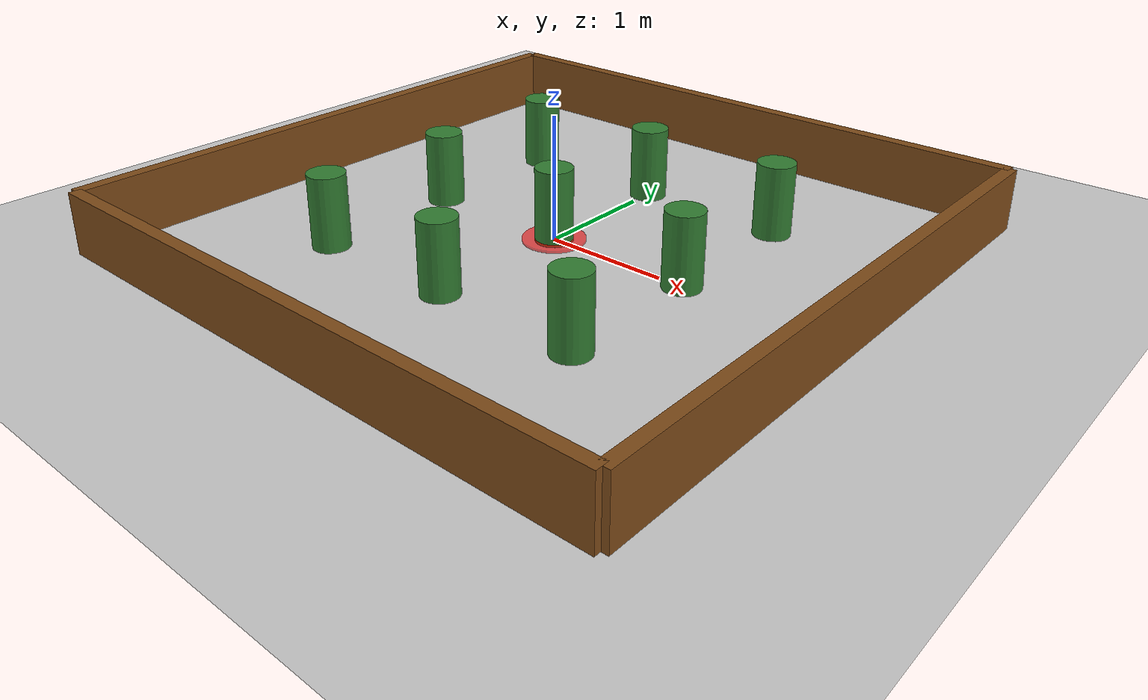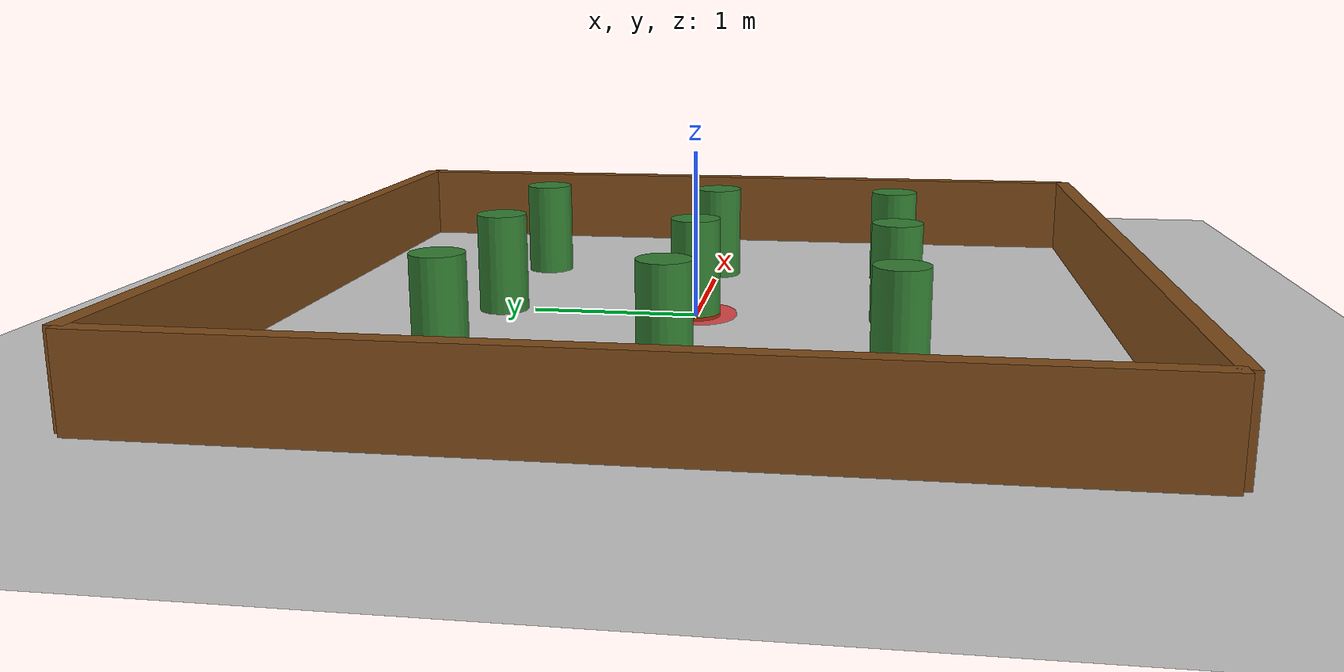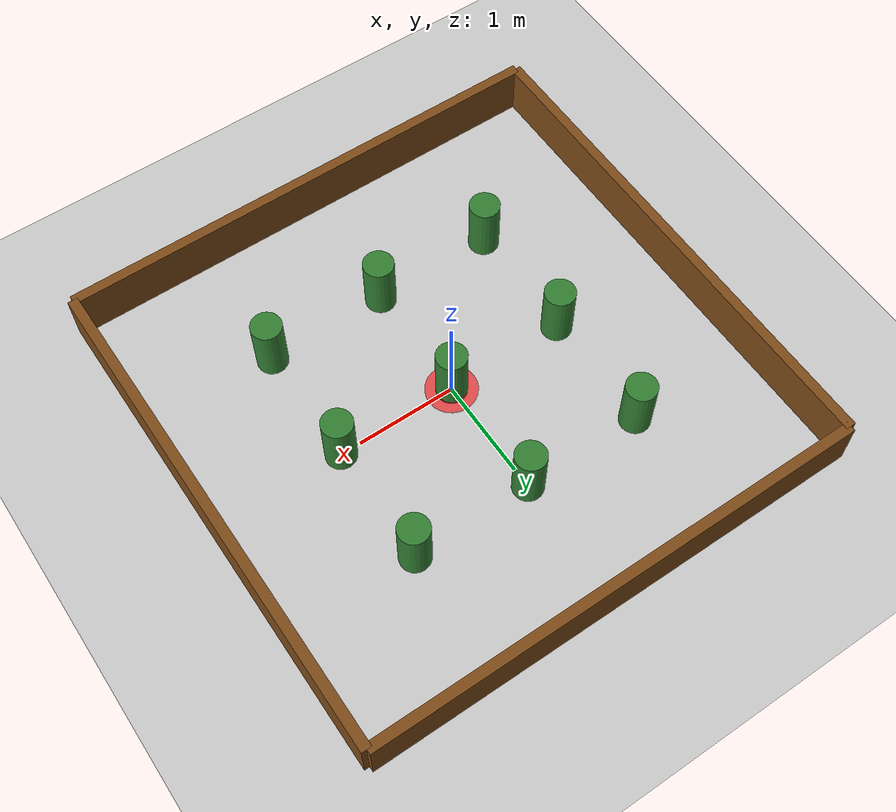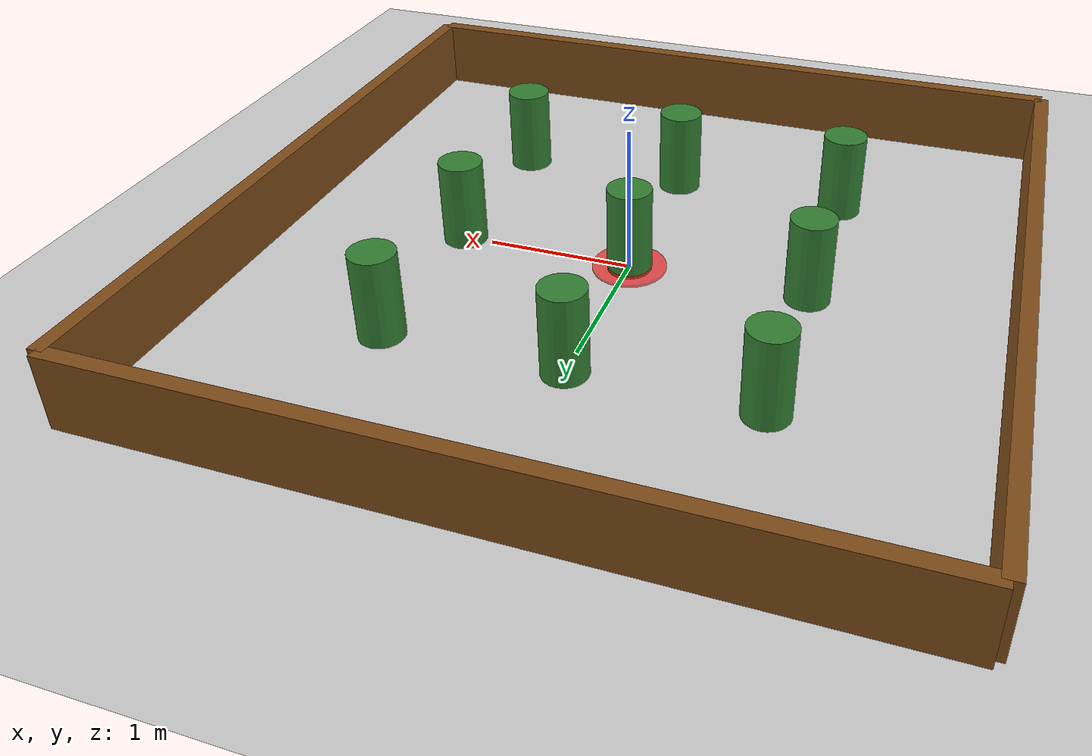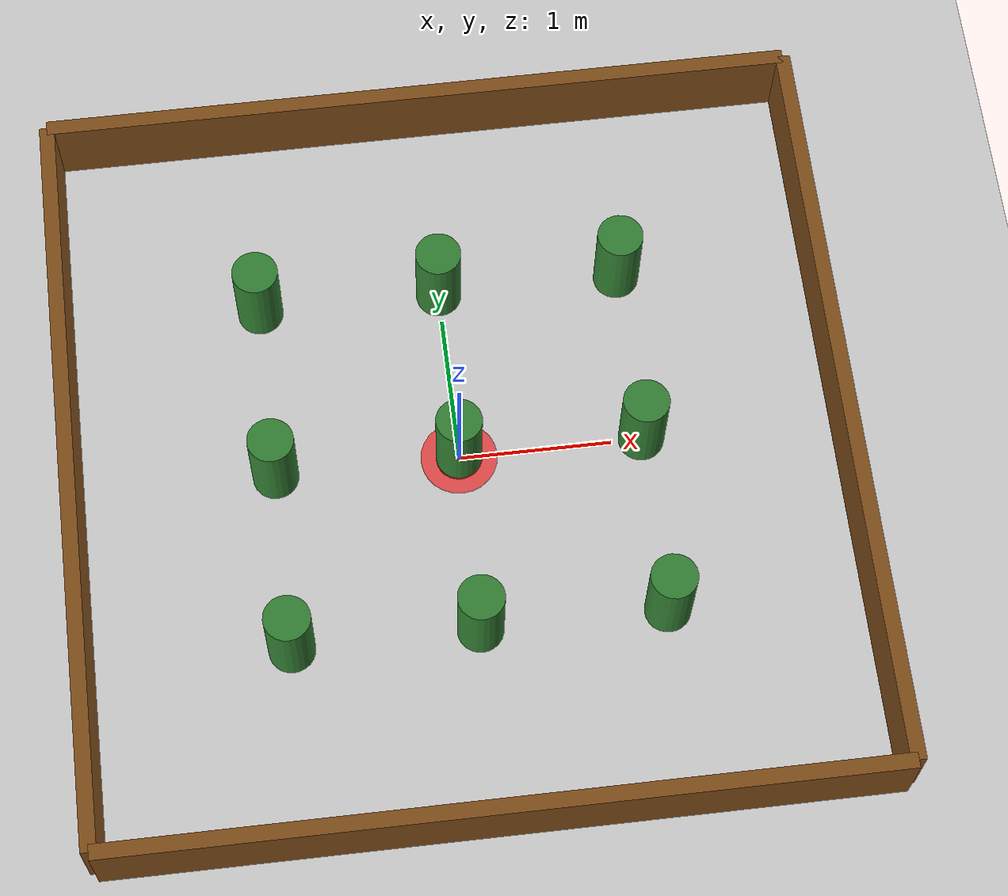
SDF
<?xml version="1.0" ?>
<sdf version="1.8">
  <world name="arena">

    <physics name="1ms" type="ignored">
      <max_step_size>0.001</max_step_size>
      <real_time_factor>1.0</real_time_factor>
    </physics>

    <plugin filename="gz-sim-physics-system" name="gz::sim::systems::Physics"/>
    <plugin filename="gz-sim-sensors-system" name="gz::sim::systems::Sensors">
      <render_engine>ogre2</render_engine>
    </plugin>
    <plugin filename="gz-sim-user-commands-system" name="gz::sim::systems::UserCommands"/>
    <plugin filename="gz-sim-scene-broadcaster-system" name="gz::sim::systems::SceneBroadcaster"/>

    <scene>
      <ambient>0.8 0.8 0.8 1</ambient>
      <background>1 1 1 1</background>
      <shadows>false</shadows>
    </scene>

    <light type="directional" name="sun">
      <cast_shadows>false</cast_shadows>
      <pose>0 0 10 0 0 0</pose>
      <diffuse>1 1 1 1</diffuse>
      <direction>-0.5 0.1 -0.9</direction>
    </light>

    <model name="ground_plane">
      <static>true</static>
      <link name="link">
        <collision name="c">
          <geometry><plane><normal>0 0 1</normal><size>100 100</size></plane></geometry>
        </collision>
        <visual name="v">
          <geometry><plane><normal>0 0 1</normal><size>100 100</size></plane></geometry>
          <material><ambient>0.8 0.8 0.8 1</ambient><diffuse>0.8 0.8 0.8 1</diffuse></material>
        </visual>
      </link>
    </model>

    <model name="goal_marker">
      <pose>0.0 0.0 0.01 0 0 0</pose>
      <static>true</static>
      <link name="link">
        <visual name="visual">
          <geometry><cylinder><radius>0.25</radius><length>0.02</length></cylinder></geometry>
          <material>
            <ambient>1.0 0.0 0.0 0.6</ambient>
            <diffuse>1.0 0.0 0.0 0.6</diffuse>
            <emissive>1.0 0.0 0.0 0.6</emissive>
          </material>
        </visual>
      </link>
    </model>

    <model name="wall_north">
      <static>true</static>
      <pose>0 2.5 0.25 0 0 0</pose>
      <link name="link">
        <collision name="c">
          <geometry><box><size>5.0 0.1 0.5</size></box></geometry>
        </collision>
        <visual name="v">
          <geometry><box><size>5.0 0.1 0.5</size></box></geometry>
          <material><ambient>0.5 0.3 0.1 1</ambient><diffuse>0.5 0.3 0.1 1</diffuse></material>
        </visual>
      </link>
    </model>

    <model name="wall_south">
      <static>true</static>
      <pose>0 -2.5 0.25 0 0 0</pose>
      <link name="link">
        <collision name="c">
          <geometry><box><size>5.0 0.1 0.5</size></box></geometry>
        </collision>
        <visual name="v">
          <geometry><box><size>5.0 0.1 0.5</size></box></geometry>
          <material><ambient>0.5 0.3 0.1 1</ambient><diffuse>0.5 0.3 0.1 1</diffuse></material>
        </visual>
      </link>
    </model>

    <model name="wall_east">
      <static>true</static>
      <pose>2.5 0 0.25 0 0 0</pose>
      <link name="link">
        <collision name="c">
          <geometry><box><size>0.1 5.0 0.5</size></box></geometry>
        </collision>
        <visual name="v">
          <geometry><box><size>0.1 5.0 0.5</size></box></geometry>
          <material><ambient>0.5 0.3 0.1 1</ambient><diffuse>0.5 0.3 0.1 1</diffuse></material>
        </visual>
      </link>
    </model>

    <model name="wall_west">
      <static>true</static>
      <pose>-2.5 0 0.25 0 0 0</pose>
      <link name="link">
        <collision name="c">
          <geometry><box><size>0.1 5.0 0.5</size></box></geometry>
        </collision>
        <visual name="v">
          <geometry><box><size>0.1 5.0 0.5</size></box></geometry>
          <material><ambient>0.5 0.3 0.1 1</ambient><diffuse>0.5 0.3 0.1 1</diffuse></material>
        </visual>
      </link>
    </model>

          <!-- GRIGLIA 3x3 (9 Cilindri a Scacchiera) -->

    <!-- Fila Alta -->
    <model name="tree_1"><static>true</static><pose>-1.2 1.2 0.3 0 0 0</pose><link name="link"><collision name="c"><geometry><cylinder><radius>0.15</radius><length>0.6</length></cylinder></geometry></collision><visual name="v"><geometry><cylinder><radius>0.15</radius><length>0.6</length></cylinder></geometry><material><ambient>0.2 0.5 0.2 1</ambient></material></visual></link></model>
    <model name="tree_2"><static>true</static><pose>0.0 1.2 0.3 0 0 0</pose><link name="link"><collision name="c"><geometry><cylinder><radius>0.15</radius><length>0.6</length></cylinder></geometry></collision><visual name="v"><geometry><cylinder><radius>0.15</radius><length>0.6</length></cylinder></geometry><material><ambient>0.2 0.5 0.2 1</ambient></material></visual></link></model>
    <model name="tree_3"><static>true</static><pose>1.2 1.2 0.3 0 0 0</pose><link name="link"><collision name="c"><geometry><cylinder><radius>0.15</radius><length>0.6</length></cylinder></geometry></collision><visual name="v"><geometry><cylinder><radius>0.15</radius><length>0.6</length></cylinder></geometry><material><ambient>0.2 0.5 0.2 1</ambient></material></visual></link></model>

    <!-- Fila Centrale -->
    <model name="tree_4"><static>true</static><pose>-1.2 0.0 0.3 0 0 0</pose><link name="link"><collision name="c"><geometry><cylinder><radius>0.15</radius><length>0.6</length></cylinder></geometry></collision><visual name="v"><geometry><cylinder><radius>0.15</radius><length>0.6</length></cylinder></geometry><material><ambient>0.2 0.5 0.2 1</ambient></material></visual></link></model>
    <model name="tree_5"><static>true</static><pose>0.0 0.0 0.3 0 0 0</pose><link name="link"><collision name="c"><geometry><cylinder><radius>0.15</radius><length>0.6</length></cylinder></geometry></collision><visual name="v"><geometry><cylinder><radius>0.15</radius><length>0.6</length></cylinder></geometry><material><ambient>0.2 0.5 0.2 1</ambient></material></visual></link></model>
    <model name="tree_6"><static>true</static><pose>1.2 0.0 0.3 0 0 0</pose><link name="link"><collision name="c"><geometry><cylinder><radius>0.15</radius><length>0.6</length></cylinder></geometry></collision><visual name="v"><geometry><cylinder><radius>0.15</radius><length>0.6</length></cylinder></geometry><material><ambient>0.2 0.5 0.2 1</ambient></material></visual></link></model>

    <!-- Fila Bassa -->
    <model name="tree_7"><static>true</static><pose>-1.2 -1.2 0.3 0 0 0</pose><link name="link"><collision name="c"><geometry><cylinder><radius>0.15</radius><length>0.6</length></cylinder></geometry></collision><visual name="v"><geometry><cylinder><radius>0.15</radius><length>0.6</length></cylinder></geometry><material><ambient>0.2 0.5 0.2 1</ambient></material></visual></link></model>
    <model name="tree_8"><static>true</static><pose>0.0 -1.2 0.3 0 0 0</pose><link name="link"><collision name="c"><geometry><cylinder><radius>0.15</radius><length>0.6</length></cylinder></geometry></collision><visual name="v"><geometry><cylinder><radius>0.15</radius><length>0.6</length></cylinder></geometry><material><ambient>0.2 0.5 0.2 1</ambient></material></visual></link></model>
    <model name="tree_9"><static>true</static><pose>1.2 -1.2 0.3 0 0 0</pose><link name="link"><collision name="c"><geometry><cylinder><radius>0.15</radius><length>0.6</length></cylinder></geometry></collision><visual name="v"><geometry><cylinder><radius>0.15</radius><length>0.6</length></cylinder></geometry><material><ambient>0.2 0.5 0.2 1</ambient></material></visual></link></model>
  </world>
</sdf>
